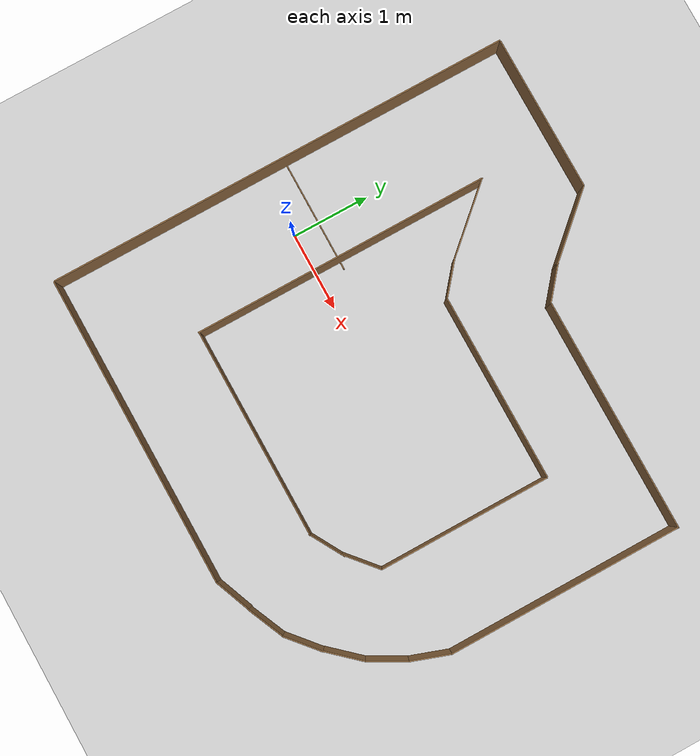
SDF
<sdf version="1.6">
 <world name="default">
  <model name="ground_plane">
   <static>1</static>
   <link name="link">
    <collision name="collision">
     <geometry><plane><normal>0 0 1</normal><size>100 100</size></plane></geometry>
     <surface><friction><ode><mu>100</mu><mu2>50</mu2></ode></friction></surface>
    </collision>
    <visual name="visual">
     <cast_shadows>0</cast_shadows>
     <geometry><plane><normal>0 0 1</normal><size>100 100</size></plane></geometry>
     <material>
      <script><uri>file://media/materials/scripts/gazebo.material</uri><name>Gazebo/Grey</name></script>
     </material>
    </visual>
   </link>
  </model>
  <light name="sun" type="directional">
   <pose>0 0 10 0 -0 0</pose>
   <diffuse>0.8 0.8 0.8 1</diffuse>
   <specular>0.1 0.1 0.1 1</specular>
   <attenuation>
    <range>1000</range>
    <constant>0.9</constant>
    <linear>0.01</linear>
    <quadratic>0.001</quadratic>
   </attenuation>
   <direction>-0.5 0.5 -1</direction>
  </light>
  <model name="startline">
   <pose>-0.1 0.33296 -0.227659 0 -0 1.56869</pose>
   <static>1</static>
   <link name="papptown_wall::link">
    <pose>0 0 0.25 0 -0 0</pose>
    <visual name="visual">
     <geometry><box><size>0.015 1.5 0.015</size></box></geometry>
     <material>
      <ambient>0.5 0.5 0.5 1</ambient>
      <diffuse>0.57 0.417 0.25 1</diffuse>
      <specular>0.1 0.1 0.1 1</specular>
      <emissive>0 0 0 0</emissive>
     </material>
    </visual>
   </link>
  </model>
  <model name="wall_5">
   <pose>1.53496 2.894504 0 0 -0 0.736056</pose>
   <static>1</static>
   <link name="papptown_wall::link">
    <pose>0 0 0.25 0 -0 0</pose>
    <collision name="collision"><geometry><box><size>0.015 1 0.5</size></box></geometry></collision>
    <visual name="visual">
     <geometry><box><size>0.015 1 0.5</size></box></geometry>
     <material>
      <ambient>0.5 0.5 0.5 1</ambient>
      <diffuse>0.57 0.417 0.25 1</diffuse>
      <specular>0.1 0.1 0.1 1</specular>
      <emissive>0 0 0 0</emissive>
     </material>
    </visual>
   </link>
  </model>
  <model name="wall_6">
   <pose>2.04294 2.386858 0 0 -0 0.881268</pose>
   <static>1</static>
   <link name="papptown_wall::link">
    <pose>0 0 0.25 0 -0 0</pose>
    <collision name="collision"><geometry><box><size>0.015 0.5 0.5</size></box></geometry></collision>
    <visual name="visual">
     <geometry><box><size>0.015 0.5 0.5</size></box></geometry>
     <material>
      <ambient>0.5 0.5 0.5 1</ambient>
      <diffuse>0.57 0.417 0.25 1</diffuse>
      <specular>0.1 0.1 0.1 1</specular>
      <emissive>0 0 0 0</emissive>
     </material>
    </visual>
   </link>
  </model>
  <model name="wall_7">
   <pose>3.72582 2.23758 0 0 -0 1.57177</pose>
   <static>1</static>
   <link name="papptown_wall::link">
    <pose>0 0 0.25 0 -0 0</pose>
    <collision name="collision"><geometry><box><size>0.015 3 0.5</size></box></geometry></collision>
    <visual name="visual">
     <geometry><box><size>0.015 3 0.5</size></box></geometry>
     <material>
      <ambient>0.5 0.5 0.5 1</ambient>
      <diffuse>0.57 0.417 0.25 1</diffuse>
      <specular>0.1 0.1 0.1 1</specular>
      <emissive>0 0 0 0</emissive>
     </material>
    </visual>
   </link>
  </model>
  <model name="wall_13">
   <pose>0.196982 3.258921 0 0 -0 1.57467</pose>
   <static>1</static>
   <link name="papptown_wall::link">
    <pose>0 0 0.25 0 -0 0</pose>
    <collision name="collision"><geometry><box><size>0.015 2 0.5</size></box></geometry></collision>
    <visual name="visual">
     <geometry><box><size>0.015 2 0.5</size></box></geometry>
     <material>
      <ambient>0.5 0.5 0.5 1</ambient>
      <diffuse>0.57 0.417 0.25 1</diffuse>
      <specular>0.1 0.1 0.1 1</specular>
      <emissive>0 0 0 0</emissive>
     </material>
    </visual>
   </link>
  </model>
  <model name="wall_14">
   <pose>5.21431 0.73692 0 0 0 -0.000378</pose>
   <static>1</static>
   <link name="papptown_wall::link">
    <pose>0 0 0.25 0 -0 0</pose>
    <collision name="collision"><geometry><box><size>0.015 3 0.5</size></box></geometry></collision>
    <visual name="visual">
     <geometry><box><size>0.015 3 0.5</size></box></geometry>
     <material>
      <ambient>0.5 0.5 0.5 1</ambient>
      <diffuse>0.57 0.417 0.25 1</diffuse>
      <specular>0.1 0.1 0.1 1</specular>
      <emissive>0 0 0 0</emissive>
     </material>
    </visual>
   </link>
  </model>
  <model name="wall_21">
   <pose>3.87015 -2.46721 0.01822 0.012192 -0.009458 -1.1525</pose>
   <static>1</static>
   <link name="papptown_wall::link">
    <pose>0 0 0.25 0 -0 0</pose>
    <collision name="collision"><geometry><box><size>0.015 0.5 0.5</size></box></geometry></collision>
    <visual name="visual">
     <geometry><box><size>0.015 0.5 0.5</size></box></geometry>
     <material>
      <ambient>0.5 0.5 0.5 1</ambient>
      <diffuse>0.57 0.417 0.25 1</diffuse>
      <specular>0.1 0.1 0.1 1</specular>
      <emissive>0 0 0 0</emissive>
     </material>
    </visual>
   </link>
  </model>
  <model name="wall_22">
   <pose>5.13135 -0.99504 0 0 0 -0.334721</pose>
   <static>1</static>
   <link name="papptown_wall::link">
    <pose>0 0 0.25 0 -0 0</pose>
    <collision name="collision"><geometry><box><size>0.015 0.5 0.5</size></box></geometry></collision>
    <visual name="visual">
     <geometry><box><size>0.015 0.5 0.5</size></box></geometry>
     <material>
      <ambient>0.5 0.5 0.5 1</ambient>
      <diffuse>0.57 0.417 0.25 1</diffuse>
      <specular>0.1 0.1 0.1 1</specular>
      <emissive>0 0 0 0</emissive>
     </material>
    </visual>
   </link>
  </model>
  <model name="wall_23">
   <pose>4.92558 -1.45102 0 0 0 -0.501603</pose>
   <static>1</static>
   <link name="papptown_wall::link">
    <pose>0 0 0.25 0 -0 0</pose>
    <collision name="collision"><geometry><box><size>0.015 0.5 0.5</size></box></geometry></collision>
    <visual name="visual">
     <geometry><box><size>0.015 0.5 0.5</size></box></geometry>
     <material>
      <ambient>0.5 0.5 0.5 1</ambient>
      <diffuse>0.57 0.417 0.25 1</diffuse>
      <specular>0.1 0.1 0.1 1</specular>
      <emissive>0 0 0 0</emissive>
     </material>
    </visual>
   </link>
  </model>
  <model name="wall_24">
   <pose>4.28755 -2.20258 0.004589 0.00773 0.000663 -0.858577</pose>
   <static>1</static>
   <link name="papptown_wall::link">
    <pose>0 0 0.25 0 -0 0</pose>
    <collision name="collision"><geometry><box><size>0.015 0.5 0.5</size></box></geometry></collision>
    <visual name="visual">
     <geometry><box><size>0.015 0.5 0.5</size></box></geometry>
     <material>
      <ambient>0.5 0.5 0.5 1</ambient>
      <diffuse>0.57 0.417 0.25 1</diffuse>
      <specular>0.1 0.1 0.1 1</specular>
      <emissive>0 0 0 0</emissive>
     </material>
    </visual>
   </link>
  </model>
  <model name="wall_25">
   <pose>3.41064 -2.6531 0 0 -0 1.9485</pose>
   <static>1</static>
   <link name="papptown_wall::link">
    <pose>0 0 0.25 0 -0 0</pose>
    <collision name="collision"><geometry><box><size>0.015 0.5 0.5</size></box></geometry></collision>
    <visual name="visual">
     <geometry><box><size>0.015 0.5 0.5</size></box></geometry>
     <material>
      <ambient>0.5 0.5 0.5 1</ambient>
      <diffuse>0.57 0.417 0.25 1</diffuse>
      <specular>0.1 0.1 0.1 1</specular>
      <emissive>0 0 0 0</emissive>
     </material>
    </visual>
   </link>
  </model>
  <model name="wall_27">
   <pose>-0.80941 0.25461 0 0 -0 0</pose>
   <static>1</static>
   <link name="papptown_wall::link">
    <pose>0 0 0.25 0 -0 0</pose>
    <collision name="collision"><geometry><box><size>0.015 6 0.5</size></box></geometry></collision>
    <visual name="visual">
     <geometry><box><size>0.015 6 0.5</size></box></geometry>
     <material>
      <ambient>0.5 0.5 0.5 1</ambient>
      <diffuse>0.57 0.417 0.25 1</diffuse>
      <specular>0.1 0.1 0.1 1</specular>
      <emissive>0 0 0 0</emissive>
     </material>
    </visual>
   </link>
  </model>
  <model name="wall_29">
   <pose>4.63833 -1.85451 0 0 -0 2.40733</pose>
   <static>1</static>
   <link name="papptown_wall::link">
    <pose>0 0 0.25 0 -0 0</pose>
    <collision name="collision"><geometry><box><size>0.015 0.5 0.5</size></box></geometry></collision>
    <visual name="visual">
     <geometry><box><size>0.015 0.5 0.5</size></box></geometry>
     <material>
      <ambient>0.5 0.5 0.5 1</ambient>
      <diffuse>0.57 0.417 0.25 1</diffuse>
      <specular>0.1 0.1 0.1 1</specular>
      <emissive>0 0 0 0</emissive>
     </material>
    </visual>
   </link>
  </model>
  <model name="wall_30">
   <pose>1.1918 -2.74499 0 0 -0 1.5735</pose>
   <static>1</static>
   <link name="papptown_wall::link">
    <pose>0 0 0.25 0 -0 0</pose>
    <collision name="collision"><geometry><box><size>0.015 4 0.5</size></box></geometry></collision>
    <visual name="visual">
     <geometry><box><size>0.015 4 0.5</size></box></geometry>
     <material>
      <ambient>0.5 0.5 0.5 1</ambient>
      <diffuse>0.57 0.417 0.25 1</diffuse>
      <specular>0.1 0.1 0.1 1</specular>
      <emissive>0 0 0 0</emissive>
     </material>
    </visual>
   </link>
  </model>
  <gravity>0 0 -9.8</gravity>
  <magnetic_field>6e-06 2.3e-05 -4.2e-05</magnetic_field>
  <atmosphere type="adiabatic"/>
  <physics name="default_physics" default="0" type="ode">
   <max_step_size>0.001</max_step_size>
   <real_time_factor>1</real_time_factor>
   <real_time_update_rate>1000</real_time_update_rate>
  </physics>
  <scene><ambient>0.4 0.4 0.4 1</ambient><background>0.7 0.7 0.7 1</background><shadows>1</shadows></scene>
  <spherical_coordinates>
   <surface_model>EARTH_WGS84</surface_model>
   <latitude_deg>0</latitude_deg>
   <longitude_deg>0</longitude_deg>
   <elevation>0</elevation>
   <heading_deg>0</heading_deg>
  </spherical_coordinates>
  <model name="wall_27_clone">
   <pose>0.54193 0.34703 0 0 -0 0</pose>
   <static>1</static>
   <link name="papptown_wall::link">
    <pose>0 0 0.25 0 -0 0</pose>
    <collision name="collision"><geometry><box><size>0.015 3.8 0.5</size></box></geometry></collision>
    <visual name="visual">
     <geometry><box><size>0.015 3.8 0.5</size></box></geometry>
     <material>
      <ambient>0.5 0.5 0.5 1</ambient>
      <diffuse>0.57 0.417 0.25 1</diffuse>
      <specular>0.1 0.1 0.1 1</specular>
      <emissive>0 0 0 0</emissive>
     </material>
    </visual>
   </link>
  </model>
  <model name="wall_5_clone">
   <pose>0.87641 1.88745 0 0 -0 0.736056</pose>
   <static>1</static>
   <link name="papptown_wall::link">
    <pose>0 0 0.25 0 -0 0</pose>
    <collision name="collision"><geometry><box><size>0.015 1 0.5</size></box></geometry></collision>
    <visual name="visual">
     <geometry><box><size>0.015 1 0.5</size></box></geometry>
     <material>
      <ambient>0.5 0.5 0.5 1</ambient>
      <diffuse>0.57 0.417 0.25 1</diffuse>
      <specular>0.1 0.1 0.1 1</specular>
      <emissive>0 0 0 0</emissive>
     </material>
    </visual>
   </link>
  </model>
  <model name="wall_6_clone">
   <pose>1.4037 1.35442 0 0 -0 0.881268</pose>
   <static>1</static>
   <link name="papptown_wall::link">
    <pose>0 0 0.25 0 -0 0</pose>
    <collision name="collision"><geometry><box><size>0.015 0.5 0.5</size></box></geometry></collision>
    <visual name="visual">
     <geometry><box><size>0.015 0.5 0.5</size></box></geometry>
     <material>
      <ambient>0.5 0.5 0.5 1</ambient>
      <diffuse>0.57 0.417 0.25 1</diffuse>
      <specular>0.1 0.1 0.1 1</specular>
      <emissive>0 0 0 0</emissive>
     </material>
    </visual>
   </link>
  </model>
  <model name="wall_7_clone">
   <pose>2.78265 1.19568 0 0 -0 1.57177</pose>
   <static>1</static>
   <link name="papptown_wall::link">
    <pose>0 0 0.25 0 -0 0</pose>
    <collision name="collision"><geometry><box><size>0.015 2.4 0.5</size></box></geometry></collision>
    <visual name="visual">
     <geometry><box><size>0.015 2.4 0.5</size></box></geometry>
     <material>
      <ambient>0.5 0.5 0.5 1</ambient>
      <diffuse>0.57 0.417 0.25 1</diffuse>
      <specular>0.1 0.1 0.1 1</specular>
      <emissive>0 0 0 0</emissive>
     </material>
    </visual>
   </link>
  </model>
  <model name="wall_14_clone">
   <pose>3.98336 0.09495 0 0 0 -0.000378</pose>
   <static>1</static>
   <link name="papptown_wall::link">
    <pose>0 0 0.25 0 -0 0</pose>
    <collision name="collision"><geometry><box><size>0.015 2.2 0.5</size></box></geometry></collision>
    <visual name="visual">
     <geometry><box><size>0.015 2.2 0.5</size></box></geometry>
     <material>
      <ambient>0.5 0.5 0.5 1</ambient>
      <diffuse>0.57 0.417 0.25 1</diffuse>
      <specular>0.1 0.1 0.1 1</specular>
      <emissive>0 0 0 0</emissive>
     </material>
    </visual>
   </link>
  </model>
  <model name="wall_30_clone">
   <pose>1.89949 -1.53786 0 0 -0 1.5735</pose>
   <static>1</static>
   <link name="papptown_wall::link">
    <pose>0 0 0.25 0 -0 0</pose>
    <collision name="collision"><geometry><box><size>0.015 2.7 0.5</size></box></geometry></collision>
    <visual name="visual">
     <geometry><box><size>0.015 2.7 0.5</size></box></geometry>
     <material>
      <ambient>0.5 0.5 0.5 1</ambient>
      <diffuse>0.57 0.417 0.25 1</diffuse>
      <specular>0.1 0.1 0.1 1</specular>
      <emissive>0 0 0 0</emissive>
     </material>
    </visual>
   </link>
  </model>
  <model name="wall_25_clone">
   <pose>3.43608 -1.41841 0 0 -0 2.08925</pose>
   <static>1</static>
   <link name="papptown_wall::link">
    <pose>0 0 0.25 0 -0 0</pose>
    <collision name="collision"><geometry><box><size>0.015 0.5 0.5</size></box></geometry></collision>
    <visual name="visual">
     <geometry><box><size>0.015 0.5 0.5</size></box></geometry>
     <material>
      <ambient>0.5 0.5 0.5 1</ambient>
      <diffuse>0.57 0.417 0.25 1</diffuse>
      <specular>0.1 0.1 0.1 1</specular>
      <emissive>0 0 0 0</emissive>
     </material>
    </visual>
   </link>
  </model>
  <model name="wall_24_clone">
   <pose>3.7969 -1.15718 0.004589 0.00773 0.000663 -0.858577</pose>
   <static>1</static>
   <link name="papptown_wall::link">
    <pose>0 0 0.25 0 -0 0</pose>
    <collision name="collision"><geometry><box><size>0.015 0.5 0.5</size></box></geometry></collision>
    <visual name="visual">
     <geometry><box><size>0.015 0.5 0.5</size></box></geometry>
     <material>
      <ambient>0.5 0.5 0.5 1</ambient>
      <diffuse>0.57 0.417 0.25 1</diffuse>
      <specular>0.1 0.1 0.1 1</specular>
      <emissive>0 0 0 0</emissive>
     </material>
    </visual>
   </link>
  </model>
 </world>
</sdf>
